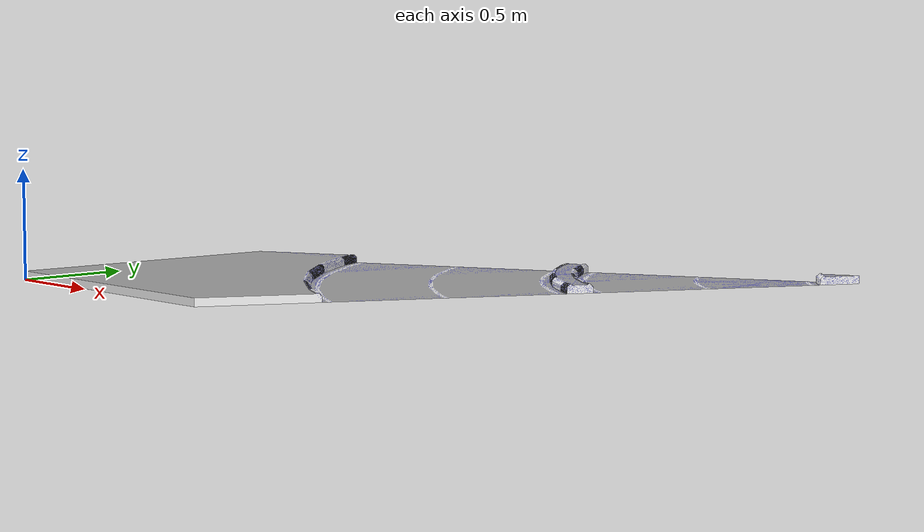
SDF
<?xml version='1.0'?>
<sdf version='1.7'>
  <model name='corner_small'>
	<static>true</static>
    <link name='link_0'>

		<collision name="collision">
		<geometry>
			<mesh>
				<uri>model://corner_small/mesh/model.dae</uri>
	            <scale>0.0 0.0 0.0</scale>
			</mesh>
		</geometry>
		</collision>

		<visual name="visual">
		<cast_shadows>true</cast_shadows>
		<geometry>
			<mesh>
				<uri>model://corner_small/mesh/model.dae</uri>
	            <scale>0.13 0.13 0.13</scale>
			</mesh>
		</geometry>
		</visual>
    </link>
  </model>
</sdf>
